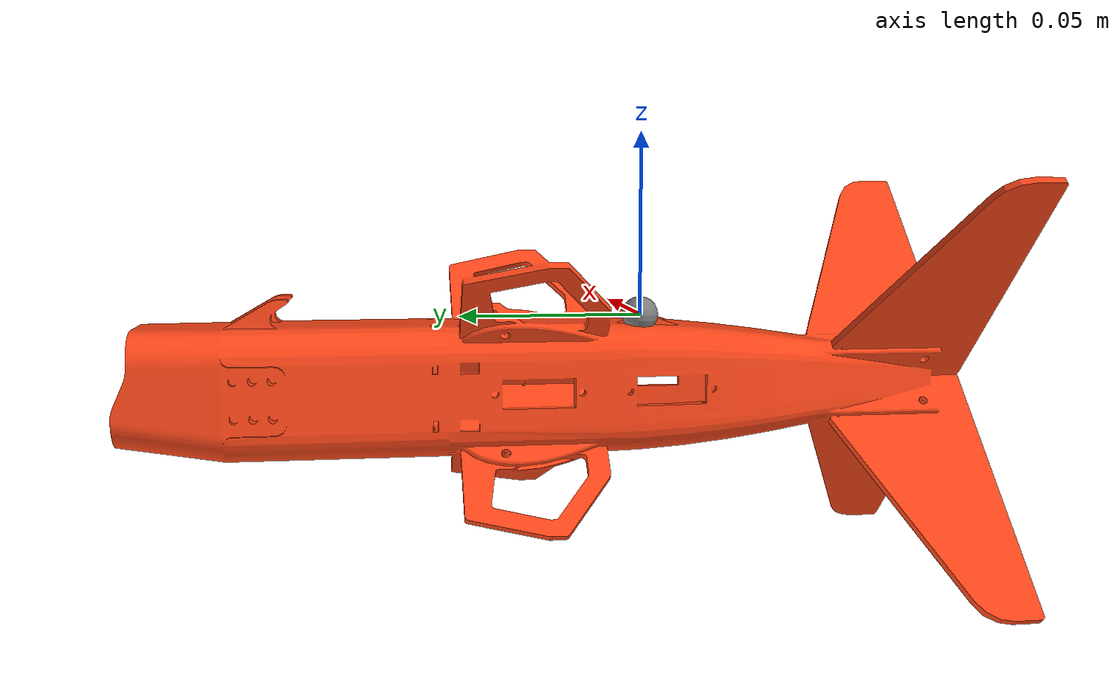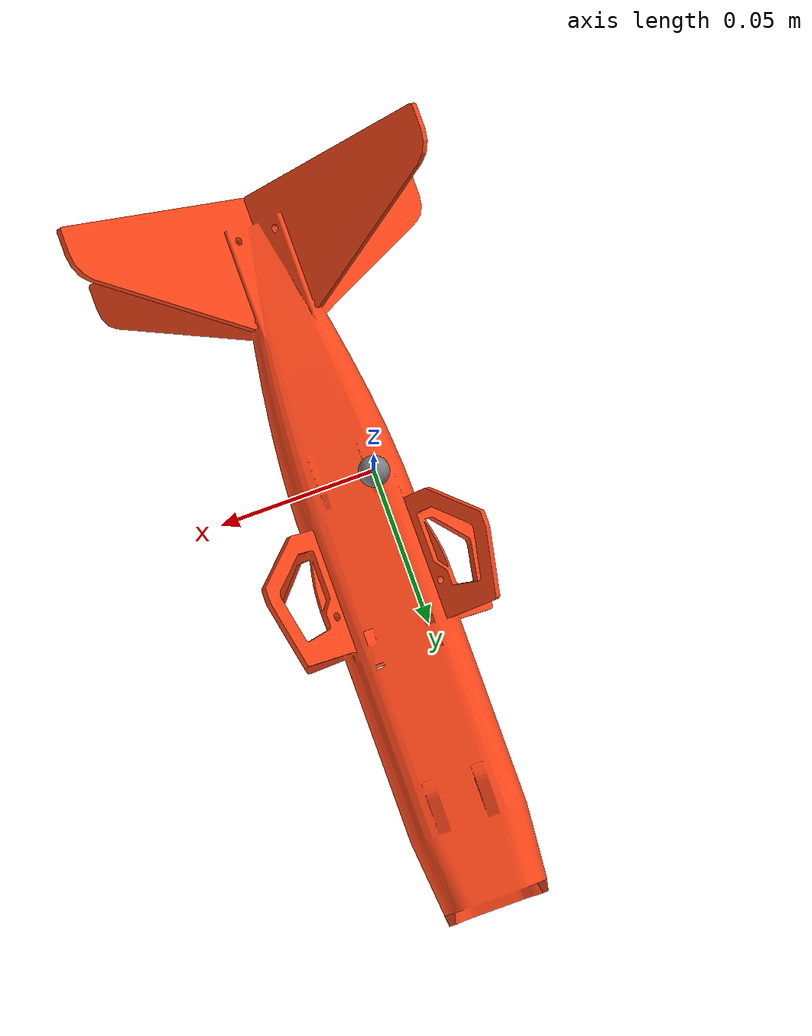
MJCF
<mujoco model="try2.SLDASM">
  <default>
    <default class="robot">
      <default class="visual">
        <geom material="visualgeom" contype="0" conaffinity="0" group="2" />
      </default>
      <default class="collision">
        <geom material="collision_material" condim="3" contype="0" conaffinity="1" priority="1" group="1" solref="0.005 1" solimp="0.99 0.999 1e-05" friction="1 0.01 0.01" />
      </default>
    </default>
  </default>

  <compiler angle="radian" />

  <asset>
    <material name="1" rgba="1 1 1 1" />
    <material name="default_material" rgba="0.7 0.7 0.7 1" />
    <material name="collision_material" rgba="1.0 0.28 0.1 0.9" />
    <mesh name="base_link.STL" file="../meshes/base_link.STL" />
  </asset>

  <worldbody>
    <body name="base_link" pos="0.00000000 0.00000000 0.00000000" quat="1 0 0 0" childclass="robot">
      <freejoint name="floating_base" />
      <geom name="base_link_collision" pos="0 0 0" quat="1.0 0.0 0.0 0.0" type="mesh" mesh="base_link.STL" class="collision" />
      <geom name="base_link_visual" pos="0 0 0" quat="1.0 0.0 0.0 0.0" material="" type="mesh" mesh="base_link.STL" class="visual" />
      <site name="base_link_site" pos="0 0 0" quat="1 0 0 0" />
      <camera name="front_camera" mode="track" fovy="90.0" quat="4.329637285359678e-17 4.329637285359677e-17 0.7071067811865475 0.7071067811865476" pos="0.0 2.0 0.5" />
      <camera name="side_camera" mode="track" fovy="90.0" quat="-0.5 -0.4999999999999999 0.5 0.5000000000000001" pos="-2.0 0.0 0.5" />
    </body>
  </worldbody>

  <actuator />

  <sensor>
    <framepos name="base_link_site_pos" objtype="site" objname="base_link_site" />
    <framequat name="base_link_site_quat" objtype="site" objname="base_link_site" />
    <framelinvel name="base_link_site_linvel" objtype="site" objname="base_link_site" />
    <frameangvel name="base_link_site_angvel" objtype="site" objname="base_link_site" />
    <velocimeter name="base_link_site_vel" site="base_link_site" />
  </sensor>
</mujoco>
